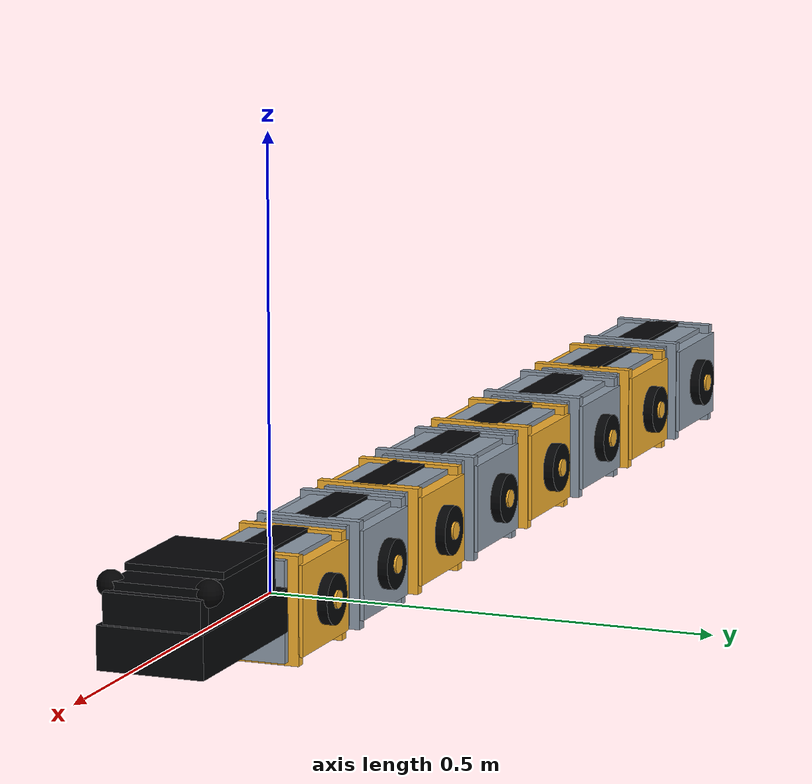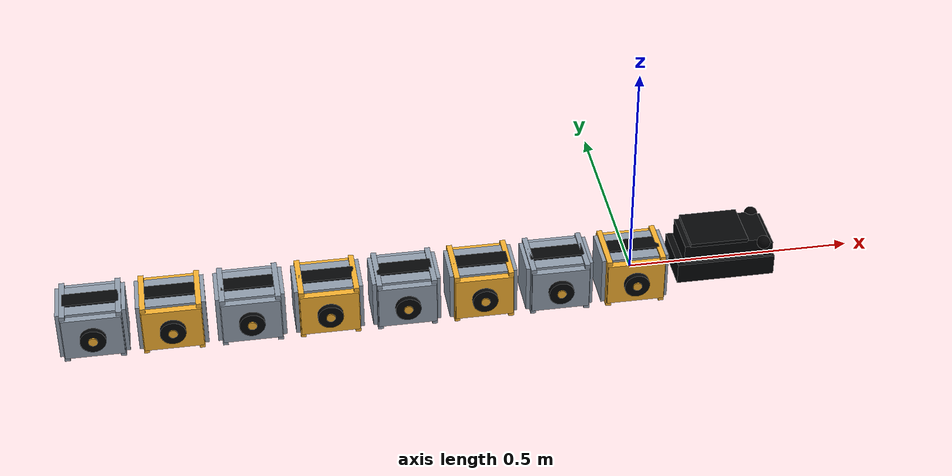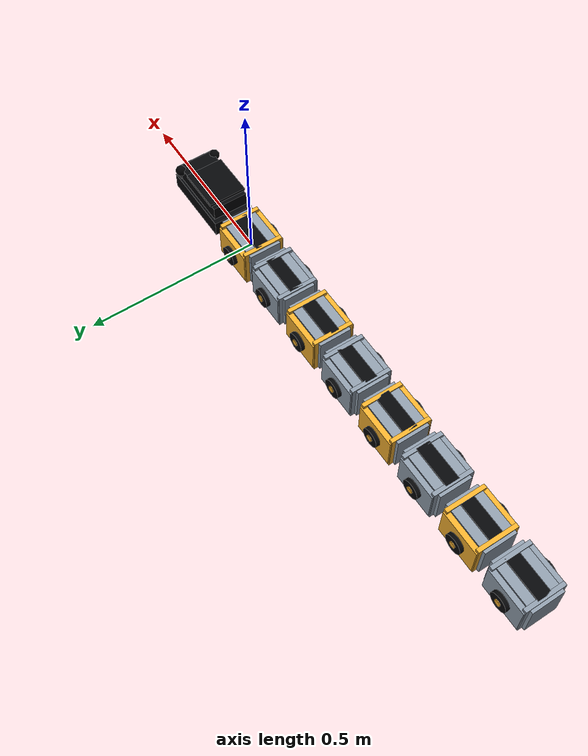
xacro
<?xml version="1.0"?>
<robot xmlns:xacro="http://www.ros.org/wiki/xacro" name="snakebot">
  <xacro:arg name="controllers_file" default="$(find snakebot_description)/config/controllers.yaml"/>
  <material name="black"><color rgba="0.018 0.022 0.028 1"/></material>
  <material name="silver"><color rgba="0.56 0.61 0.67 1"/></material>
  <material name="bright_gold"><color rgba="0.96 0.69 0.18 1"/></material>
  <material name="tongue_red"><color rgba="0.88 0.012 0.035 1"/></material>
  <material name="eye_black"><color rgba="0.008 0.008 0.012 1"/></material>
  <xacro:macro name="box_inertia" params="mass length width height x">
    <inertial>
      <origin xyz="${x} 0 0"/><mass value="${mass}"/>
      <inertia ixx="${mass*(width*width+height*height)/12.0}"
        iyy="${mass*(length*length+height*height)/12.0}"
        izz="${mass*(length*length+width*width)/12.0}" ixy="0" ixz="0" iyz="0"/>
    </inertial>
  </xacro:macro>
  <xacro:macro name="box_visual" params="name x y z length width height material">
    <!-- Leave URDF visuals unnamed: named visuals prevent material overrides
         in the installed URDF-to-SDF converter. SDF generates unique names. -->
    <visual>
      <origin xyz="${x} ${y} ${z}"/>
      <geometry><box size="${length} ${width} ${height}"/></geometry><material name="${material}"/>
    </visual>
  </xacro:macro>
  <xacro:macro name="hub" params="name center_x side armor">
    <xacro:box_visual name="${name}_armor_${side}" x="${center_x}" y="${side*0.056}" z="0"
      length="0.128" width="0.016" height="0.100" material="${armor}"/>
    <!-- These are decorative hubs, not physical wheels. -->
    <visual>
      <origin xyz="${center_x} ${side*0.071} 0" rpy="${pi/2} 0 0"/>
      <geometry><cylinder radius="0.028" length="0.012"/></geometry><material name="black"/>
    </visual>
    <visual>
      <origin xyz="${center_x} ${side*0.078} 0" rpy="${pi/2} 0 0"/>
      <geometry><cylinder radius="0.010" length="0.003"/></geometry><material name="bright_gold"/>
    </visual>
  </xacro:macro>
  <xacro:macro name="body_segment" params="name center_x armor:='bright_gold'">
    <link name="${name}">
      <!-- Uniform box envelope: 0.15 x 0.12 x 0.12 m, 0.8 kg. -->
      <xacro:box_inertia mass="0.8" length="0.15" width="0.12" height="0.12" x="${center_x}"/>
      <xacro:box_visual name="${name}_frame" x="${center_x}" y="0" z="0"
        length="0.15" width="0.096" height="0.112" material="silver"/>
      <xacro:box_visual name="${name}_spine" x="${center_x}" y="0" z="0.056"
        length="0.12" width="0.040" height="0.008" material="black"/>
      <xacro:box_visual name="${name}_front_band" x="${center_x+0.060}" y="0" z="0"
        length="0.012" width="0.12" height="0.12" material="${armor}"/>
      <xacro:box_visual name="${name}_rear_band" x="${center_x-0.060}" y="0" z="0"
        length="0.012" width="0.12" height="0.12" material="${armor}"/>
      <xacro:hub name="${name}" center_x="${center_x}" side="1" armor="${armor}"/>
      <xacro:hub name="${name}" center_x="${center_x}" side="-1" armor="${armor}"/>
      <collision name="${name}_box">
        <origin xyz="${center_x} 0 0"/><geometry><box size="0.146 0.116 0.118"/></geometry>
      </collision>
    </link>
    <gazebo reference="${name}">
      <mu1>0.05</mu1><mu2>0.05</mu2><selfCollide>false</selfCollide>
      <visual><material><specular>0.85 0.85 0.85 1</specular>
        <pbr><metal><metalness>0.92</metalness><roughness>0.22</roughness></metal></pbr>
      </material></visual>
    </gazebo>
  </xacro:macro>
  <!-- base_link is the first BODY, so the planar model root stays level. -->
  <xacro:body_segment name="base_link" center_x="0"/>
  <link name="head_yaw_link">
    <!-- Give the now-articulated neck a finite, well-conditioned inertia. -->
    <xacro:box_inertia mass="0.08" length="0.045" width="0.08" height="0.05" x="0"/>
  </link>
  <joint name="joint_1" type="revolute">
    <parent link="base_link"/><child link="head_yaw_link"/><origin xyz="0.095 0 0.035"/>
    <axis xyz="0 0 1"/><limit lower="-0.7" upper="0.7" effort="30" velocity="8"/>
    <dynamics damping="0.05" friction="0.01"/>
  </joint>
  <joint name="head_pitch_joint" type="revolute">
    <parent link="head_yaw_link"/><child link="head_link"/>
    <origin xyz="0 0 0"/><axis xyz="0 -1 0"/>
    <limit lower="-0.22" upper="0.85" effort="30" velocity="3"/>
    <dynamics damping="0.12" friction="0.01"/>
  </joint>
  <link name="head_link">
    <xacro:box_inertia mass="1.52" length="0.22" width="0.12" height="0.10" x="0.11"/>
    <xacro:box_visual name="lower_jaw" x="0.11" y="0" z="-0.026"
      length="0.22" width="0.12" height="0.048" material="black"/>
    <xacro:box_visual name="upper_jaw" x="0.11" y="0" z="0.020"
      length="0.19" width="0.105" height="0.044" material="black"/>
    <xacro:box_visual name="forehead_armor" x="0.092" y="0" z="0.046"
      length="0.13" width="0.112" height="0.008" material="black"/>
    <xacro:box_visual name="nose" x="0.205" y="0" z="0.015"
      length="0.020" width="0.110" height="0.035" material="black"/>
    <visual><origin xyz="0.193 0.055 0.036"/>
      <geometry><sphere radius="0.015"/></geometry><material name="eye_black"/></visual>
    <visual><origin xyz="0.193 -0.055 0.036"/>
      <geometry><sphere radius="0.015"/></geometry><material name="eye_black"/></visual>
    <collision name="head_box"><origin xyz="0.11 0 0"/>
      <geometry><box size="0.214 0.116 0.096"/></geometry></collision>
  </link>
  <gazebo reference="head_link">
    <mu1>0.05</mu1><mu2>0.05</mu2><selfCollide>false</selfCollide>
    <visual><material><specular>0.9 0.9 0.9 1</specular>
      <pbr><metal><metalness>0.85</metalness><roughness>0.14</roughness></metal></pbr>
    </material></visual>
  </gazebo>
  <joint name="tongue_joint" type="prismatic">
    <parent link="head_link"/><child link="tongue_link"/>
    <origin xyz="0.19 0 0"/><axis xyz="1 0 0"/>
    <limit lower="-0.05" upper="0.12" effort="5" velocity="3"/>
    <dynamics damping="0.01"/>
  </joint>
  <link name="tongue_link">
    <xacro:box_inertia mass="0.003" length="0.08" width="0.024" height="0.006" x="-0.01"/>
    <visual><origin xyz="-0.0225 0 0" rpy="0 ${pi/2} 0"/>
      <geometry><cylinder radius="0.003" length="0.045"/></geometry><material name="tongue_red"/></visual>
    <visual><origin xyz="0.0117 0.0043 0" rpy="0 ${pi/2} 0.35"/>
      <geometry><cylinder radius="0.0025" length="0.025"/></geometry><material name="tongue_red"/></visual>
    <visual><origin xyz="0.0117 -0.0043 0" rpy="0 ${pi/2} -0.35"/>
      <geometry><cylinder radius="0.0025" length="0.025"/></geometry><material name="tongue_red"/></visual>
  </link>
  <gazebo reference="tongue_link"><selfCollide>false</selfCollide>
    <visual><material><emissive>0.15 0.001 0.003 1</emissive>
      <pbr><metal><metalness>0</metalness><roughness>0.45</roughness></metal></pbr>
    </material></visual>
  </gazebo>
  <xacro:macro name="tail_segment" params="index parent joint_x">
    <xacro:body_segment name="body_${index}" center_x="-0.075"
      armor="${'bright_gold' if int(index) % 2 else 'silver'}"/>
    <joint name="joint_${index}" type="revolute">
      <parent link="${parent}"/><child link="body_${index}"/>
      <origin xyz="${joint_x} 0 0"/><axis xyz="0 0 1"/>
      <limit lower="-0.7" upper="0.7" effort="30" velocity="8"/>
      <dynamics damping="0.05" friction="0.01"/>
    </joint>
  </xacro:macro>
  <xacro:tail_segment index="2" parent="base_link" joint_x="-0.095"/>
  <xacro:tail_segment index="3" parent="body_2" joint_x="-0.17"/>
  <xacro:tail_segment index="4" parent="body_3" joint_x="-0.17"/>
  <xacro:tail_segment index="5" parent="body_4" joint_x="-0.17"/>
  <xacro:tail_segment index="6" parent="body_5" joint_x="-0.17"/>
  <xacro:tail_segment index="7" parent="body_6" joint_x="-0.17"/>
  <xacro:tail_segment index="8" parent="body_7" joint_x="-0.17"/>
  <xacro:macro name="controlled_joint" params="index">
    <joint name="joint_${index}">
      <command_interface name="position"><param name="min">-0.7</param><param name="max">0.7</param></command_interface>
      <state_interface name="position"><param name="initial_value">0</param></state_interface>
      <state_interface name="velocity"/>
    </joint>
  </xacro:macro>
  <ros2_control name="GazeboSimSystem" type="system">
    <hardware><plugin>gz_ros2_control/GazeboSimSystem</plugin></hardware>
    <xacro:controlled_joint index="1"/><xacro:controlled_joint index="2"/>
    <xacro:controlled_joint index="3"/><xacro:controlled_joint index="4"/>
    <xacro:controlled_joint index="5"/><xacro:controlled_joint index="6"/>
    <xacro:controlled_joint index="7"/><xacro:controlled_joint index="8"/>
    <joint name="head_pitch_joint">
      <command_interface name="position"><param name="min">-0.22</param><param name="max">0.85</param></command_interface>
      <state_interface name="position"><param name="initial_value">0</param></state_interface><state_interface name="velocity"/>
    </joint>
    <joint name="tongue_joint">
      <command_interface name="position"><param name="min">-0.05</param><param name="max">0.12</param></command_interface>
      <state_interface name="position"><param name="initial_value">0</param></state_interface><state_interface name="velocity"/>
    </joint>
  </ros2_control>
  <gazebo>
    <plugin filename="gz_ros2_control-system" name="gz_ros2_control::GazeboSimROS2ControlPlugin">
      <parameters>$(arg controllers_file)</parameters>
      <position_proportional_gain>0.5</position_proportional_gain>
    </plugin>
    <plugin filename="gz-sim-velocity-control-system" name="gz::sim::systems::VelocityControl"/>
    <plugin filename="gz-sim-odometry-publisher-system" name="gz::sim::systems::OdometryPublisher">
      <odom_frame>odom</odom_frame><robot_base_frame>base_link</robot_base_frame>
      <odom_topic>/model/snakebot/odometry</odom_topic>
      <odom_publish_frequency>30</odom_publish_frequency><dimensions>2</dimensions>
    </plugin>
  </gazebo>
</robot>
